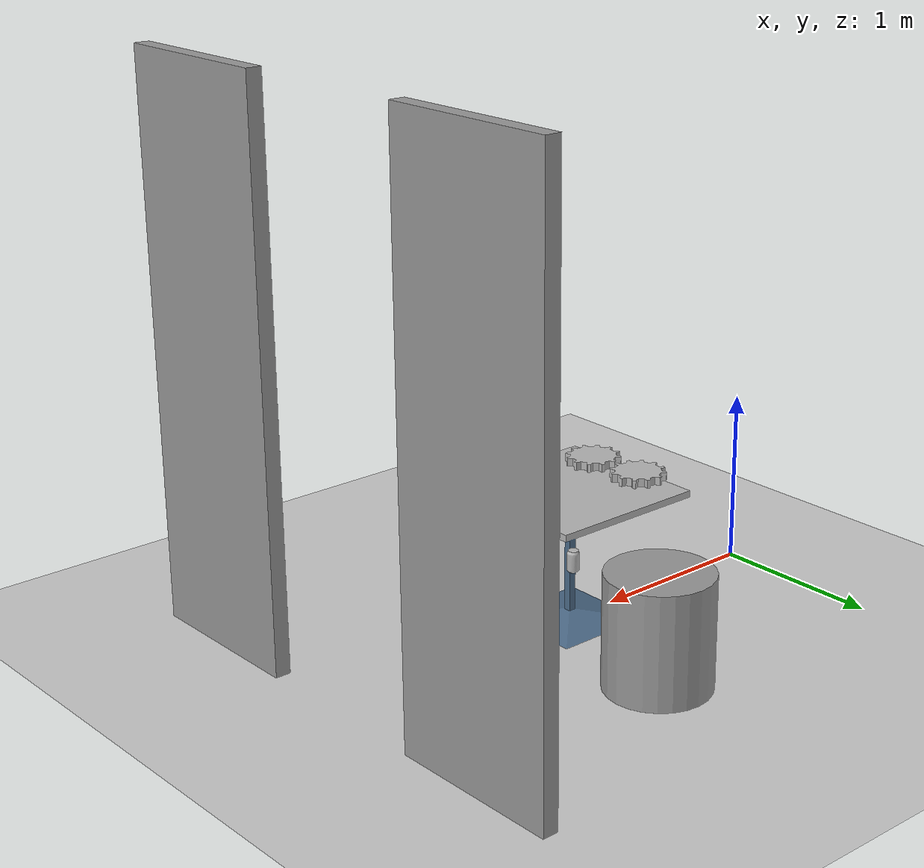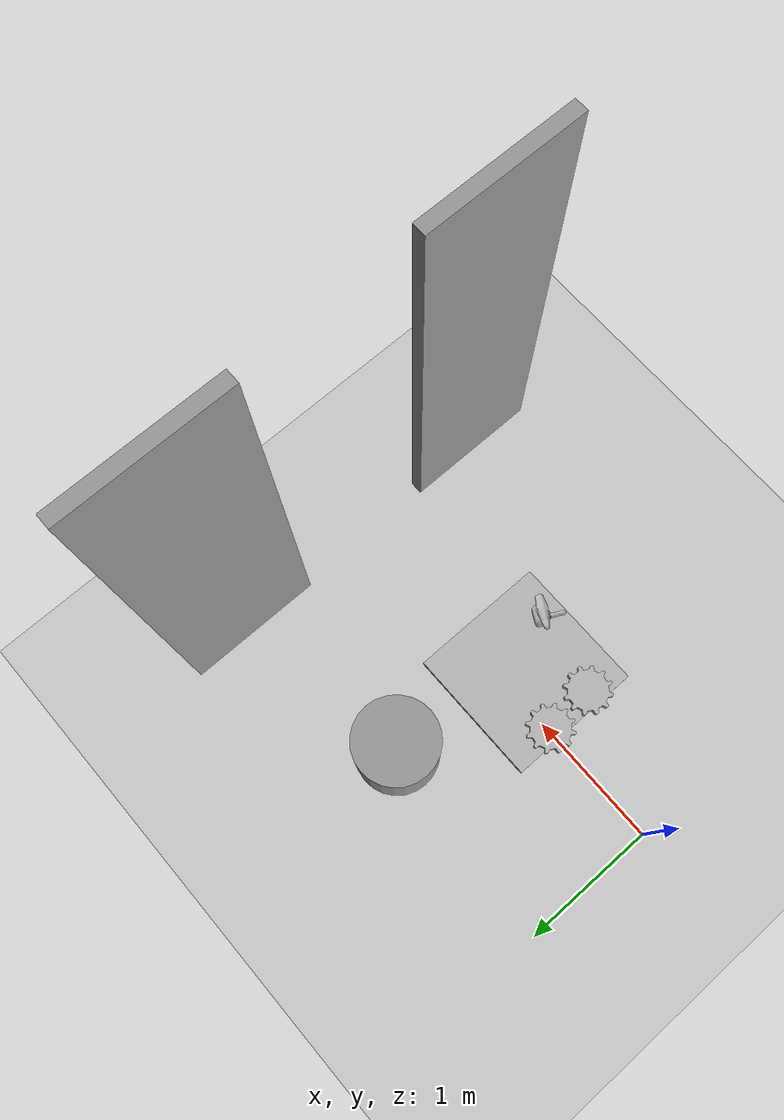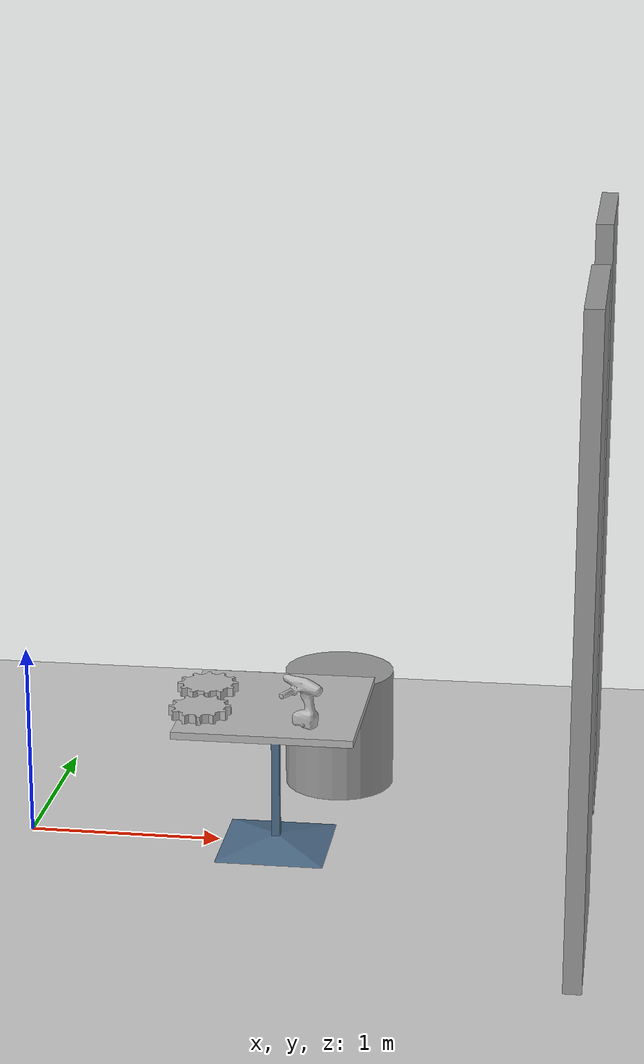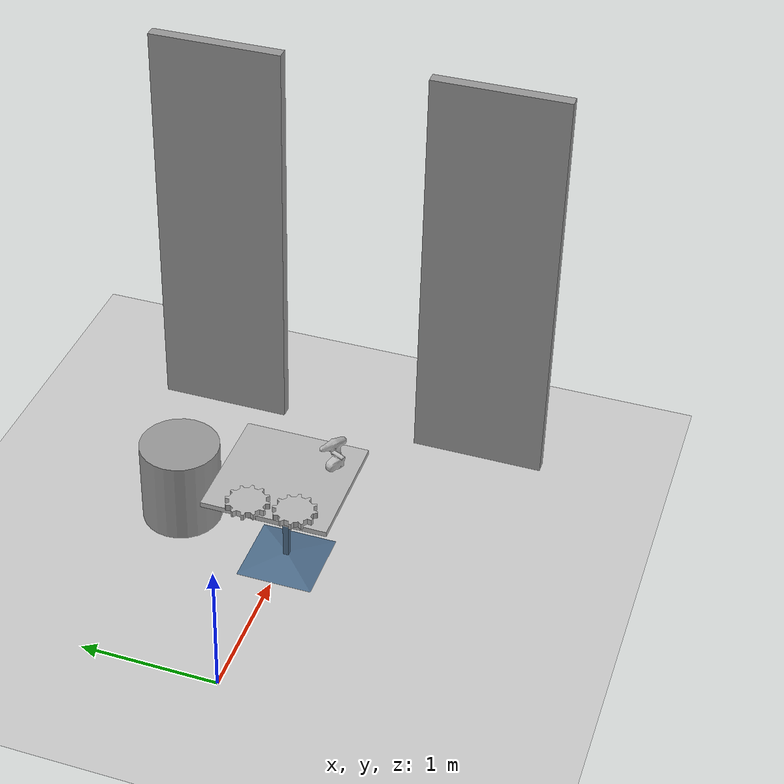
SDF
<sdf version="1.6">
 <world name="default">
  <model name="ground_plane">
   <static>1</static>
   <link name="link">
    <collision name="collision">
     <geometry><plane><normal>0 0 1</normal><size>100 100</size></plane></geometry>
     <surface><friction><ode><mu>100</mu><mu2>50</mu2></ode></friction></surface>
    </collision>
    <visual name="visual">
     <cast_shadows>0</cast_shadows>
     <geometry><plane><normal>0 0 1</normal><size>100 100</size></plane></geometry>
     <material>
      <script><uri>file://media/materials/scripts/gazebo.material</uri><name>Gazebo/Grey</name></script>
     </material>
    </visual>
   </link>
  </model>
  <gravity>0 0 -9.8</gravity>
  <magnetic_field>6e-06 2.3e-05 -4.2e-05</magnetic_field>
  <atmosphere type="adiabatic"/>
  <physics name="default_physics" default="0" type="ode">
   <max_step_size>0.001</max_step_size>
   <real_time_factor>1</real_time_factor>
   <real_time_update_rate>1000</real_time_update_rate>
  </physics>
  <scene><ambient>0.4 0.4 0.4 1</ambient><background>0.7 0.7 0.7 1</background><shadows>1</shadows></scene>
  <spherical_coordinates>
   <surface_model>EARTH_WGS84</surface_model>
   <latitude_deg>0</latitude_deg>
   <longitude_deg>0</longitude_deg>
   <elevation>0</elevation>
   <heading_deg>0</heading_deg>
  </spherical_coordinates>
  <light name="user_point_light_0" type="point">
   <pose>0.152939 -1.04387 1 0 -0 0</pose>
   <diffuse>0.5 0.5 0.5 1</diffuse>
   <specular>0.1 0.1 0.1 1</specular>
   <attenuation>
    <range>20</range>
    <constant>0.5</constant>
    <linear>0.01</linear>
    <quadratic>0.001</quadratic>
   </attenuation>
   <cast_shadows>0</cast_shadows>
   <direction>0 0 -1</direction>
  </light>
  <model name="cafe_table">
   <static>1</static>
   <link name="link">
    <collision name="surface">
     <pose>0 0 0.755 0 -0 0</pose>
     <geometry><box><size>0.913 0.913 0.04</size></box></geometry>
    </collision>
    <collision name="column">
     <pose>0 0 0.37 0 -0 0</pose>
     <geometry><box><size>0.042 0.042 0.74</size></box></geometry>
    </collision>
    <collision name="base">
     <pose>0 0 0.02 0 -0 0</pose>
     <geometry><box><size>0.56 0.56 0.04</size></box></geometry>
    </collision>
    <visual name="visual">
     <geometry><mesh><uri>model://cafe_table/meshes/cafe_table.dae</uri><scale>1 1 1</scale></mesh></geometry>
    </visual>
   </link>
   <pose>1.30171 -0.014203 0 0 -0 0</pose>
  </model>
  <model name="drill">
   <link name="link">
    <inertial>
     <pose>-0.00637 -0.008 0.13254 0 -0 0</pose>
     <inertia>
      <ixx>0.0133113</ixx>
      <ixy>-0.00030365</ixy>
      <ixz>-0.00034148</ixz>
      <iyy>0.0115766</iyy>
      <iyz>0.00088073</iyz>
      <izz>0.00378028</izz>
     </inertia>
     <mass>1.50252</mass>
    </inertial>
    <collision name="collision">
     <pose>0 0 -0.09 0 -0 0</pose>
     <geometry>
      <mesh><uri>model://cordless_drill/meshes/cordless_drill.stl</uri><scale>1 1 1</scale></mesh>
     </geometry>
    </collision>
    <visual name="visual">
     <pose>0 0 -0.09 0 -0 0</pose>
     <geometry>
      <mesh><uri>model://cordless_drill/meshes/cordless_drill.dae</uri><scale>1 1 1</scale></mesh>
     </geometry>
    </visual>
   </link>
   <pose>1.49045 -0.299395 0.772934 3.8e-05 3e-06 1.0375</pose>
  </model>
  <model name="gear_part_1">
   <link name="link">
    <inertial>
     <pose>0 0 0.005875 0 -0 0</pose>
     <mass>0.5</mass>
     <inertia>
      <ixx>0.000198203</ixx>
      <ixy>0</ixy>
      <ixz>0</ixz>
      <iyy>0.000198203</iyy>
      <iyz>0</iyz>
      <izz>0.000384405</izz>
     </inertia>
    </inertial>
    <collision name="collision">
     <pose>0 0 0.005875 0 -0 0</pose>
     <geometry><cylinder><length>0.012</length><radius>0.0392125</radius></cylinder></geometry>
     <surface><contact><ode><max_vel>0.1</max_vel><min_depth>0.001</min_depth></ode></contact></surface>
    </collision>
    <visual name="visual">
     <geometry><mesh><uri>model://gear_part/meshes/gear.dae</uri><scale>1 1 1</scale></mesh></geometry>
     <material>
      <script>
       <uri>model://arm_part/materials/scripts</uri>
       <uri>model://arm_part/materials/textures</uri>
       <name>ArmPart/Diffuse</name>
      </script>
     </material>
    </visual>
   </link>
   <pose>0.946535 -0.21052 0.774551 0 -0 0</pose>
  </model>
  <model name="gear_part_2">
   <link name="link">
    <inertial>
     <pose>0 0 0.005875 0 -0 0</pose>
     <mass>0.5</mass>
     <inertia>
      <ixx>0.000198203</ixx>
      <ixy>0</ixy>
      <ixz>0</ixz>
      <iyy>0.000198203</iyy>
      <iyz>0</iyz>
      <izz>0.000384405</izz>
     </inertia>
    </inertial>
    <collision name="collision">
     <pose>0 0 0.005875 0 -0 0</pose>
     <geometry><cylinder><length>0.012</length><radius>0.0392125</radius></cylinder></geometry>
     <surface><contact><ode><max_vel>0.1</max_vel><min_depth>0.001</min_depth></ode></contact></surface>
    </collision>
    <visual name="visual">
     <geometry><mesh><uri>model://gear_part/meshes/gear.dae</uri><scale>1 1 1</scale></mesh></geometry>
     <material>
      <script>
       <uri>model://arm_part/materials/scripts</uri>
       <uri>model://arm_part/materials/textures</uri>
       <name>ArmPart/Diffuse</name>
      </script>
     </material>
    </visual>
   </link>
   <pose>0.926645 0.126681 0.774551 0 -0 0</pose>
  </model>
  <model name="wall_section">
   <link name="link">
    <inertial>
     <mass>0.282882</mass>
     <inertia>
      <ixx>0.26157</ixx>
      <ixy>0</ixy>
      <ixz>0</ixz>
      <iyy>0.238184</iyy>
      <iyz>0</iyz>
      <izz>0.0237604</izz>
     </inertia>
    </inertial>
    <visual name="visual">
     <geometry><box><size>0.089035 1 3.17743</size></box></geometry>
     <material>
      <script><name>Gazebo/Grey</name><uri>file://media/materials/scripts/gazebo.material</uri></script>
      <ambient>0.3 0.3 0.3 1</ambient>
      <diffuse>0.7 0.7 0.7 1</diffuse>
      <specular>0.01 0.01 0.01 1</specular>
      <emissive>0 0 0 1</emissive>
     </material>
    </visual>
    <collision name="collision">
     <geometry><box><size>0.089035 1 3.17743</size></box></geometry>
     <surface>
      <friction>
       <ode><mu>1</mu><mu2>1</mu2><fdir1>0 0 0</fdir1><slip1>0</slip1><slip2>0</slip2></ode>
       <torsional>
        <coefficient>1</coefficient>
        <patch_radius>0</patch_radius>
        <surface_radius>0</surface_radius>
        <use_patch_radius>1</use_patch_radius>
        <ode><slip>0</slip></ode>
       </torsional>
      </friction>
      <bounce><restitution_coefficient>0</restitution_coefficient><threshold>1e+06</threshold></bounce>
      <contact>
       <collide_without_contact>0</collide_without_contact>
       <collide_without_contact_bitmask>1</collide_without_contact_bitmask>
       <collide_bitmask>1</collide_bitmask>
       <ode>
        <soft_cfm>0</soft_cfm>
        <soft_erp>0.2</soft_erp>
        <kp>1e+13</kp>
        <kd>1</kd>
        <max_vel>0.01</max_vel>
        <min_depth>0</min_depth>
       </ode>
       <bullet>
        <split_impulse>1</split_impulse>
        <split_impulse_penetration_threshold>-0.01</split_impulse_penetration_threshold>
        <soft_cfm>0</soft_cfm>
        <soft_erp>0.2</soft_erp>
        <kp>1e+13</kp>
        <kd>1</kd>
       </bullet>
      </contact>
     </surface>
    </collision>
   </link>
   <static>0</static>
   <pose>2.88084 1.06962 1.58871 1e-06 -0 -1.4e-05</pose>
  </model>
  <model name="wall_section_clone">
   <link name="link">
    <inertial>
     <mass>0.282882</mass>
     <inertia>
      <ixx>0.26157</ixx>
      <ixy>0</ixy>
      <ixz>0</ixz>
      <iyy>0.238184</iyy>
      <iyz>0</iyz>
      <izz>0.0237604</izz>
     </inertia>
    </inertial>
    <visual name="visual">
     <geometry><box><size>0.089035 1 3.17743</size></box></geometry>
     <material>
      <script><name>Gazebo/Grey</name><uri>file://media/materials/scripts/gazebo.material</uri></script>
      <ambient>0.3 0.3 0.3 1</ambient>
      <diffuse>0.7 0.7 0.7 1</diffuse>
      <specular>0.01 0.01 0.01 1</specular>
      <emissive>0 0 0 1</emissive>
     </material>
    </visual>
    <collision name="collision">
     <geometry><box><size>0.089035 1 3.17743</size></box></geometry>
     <surface>
      <friction>
       <ode><mu>1</mu><mu2>1</mu2><fdir1>0 0 0</fdir1><slip1>0</slip1><slip2>0</slip2></ode>
       <torsional>
        <coefficient>1</coefficient>
        <patch_radius>0</patch_radius>
        <surface_radius>0</surface_radius>
        <use_patch_radius>1</use_patch_radius>
        <ode><slip>0</slip></ode>
       </torsional>
      </friction>
      <bounce><restitution_coefficient>0</restitution_coefficient><threshold>1e+06</threshold></bounce>
      <contact>
       <collide_without_contact>0</collide_without_contact>
       <collide_without_contact_bitmask>1</collide_without_contact_bitmask>
       <collide_bitmask>1</collide_bitmask>
       <ode>
        <soft_cfm>0</soft_cfm>
        <soft_erp>0.2</soft_erp>
        <kp>1e+13</kp>
        <kd>1</kd>
        <max_vel>0.01</max_vel>
        <min_depth>0</min_depth>
       </ode>
       <bullet>
        <split_impulse>1</split_impulse>
        <split_impulse_penetration_threshold>-0.01</split_impulse_penetration_threshold>
        <soft_cfm>0</soft_cfm>
        <soft_erp>0.2</soft_erp>
        <kp>1e+13</kp>
        <kd>1</kd>
       </bullet>
      </contact>
     </surface>
    </collision>
   </link>
   <static>0</static>
   <pose>2.89554 -0.996268 1.58872 0 -0 0.001027</pose>
  </model>
  <model name="coke_can">
   <link name="link">
    <inertial>
     <mass>0.39</mass>
     <inertia><ixx>0.00058</ixx><ixy>0</ixy><ixz>0</ixz><iyy>0.00058</iyy><iyz>0</iyz><izz>0.00019</izz></inertia>
    </inertial>
    <collision name="collision">
     <pose>0 0 -0.46 0 -0 0</pose>
     <geometry><mesh><uri>model://coke_can/meshes/coke_can.dae</uri><scale>1 1 1</scale></mesh></geometry>
    </collision>
    <visual name="visual">
     <pose>0 0 -0.46 0 -0 0</pose>
     <geometry><mesh><uri>model://coke_can/meshes/coke_can.dae</uri><scale>1 1 1</scale></mesh></geometry>
    </visual>
   </link>
   <pose>1.62039 0.357698 0.770862 -0.042211 0.015161 -0.004561</pose>
  </model>
  <model name="unit_cylinder_0">
   <pose>1.51479 0.885181 0.322763 -1e-06 -1e-06 0</pose>
   <link name="link">
    <inertial>
     <mass>1</mass>
     <inertia><ixx>0.145833</ixx><ixy>0</ixy><ixz>0</ixz><iyy>0.145833</iyy><iyz>0</iyz><izz>0.125</izz></inertia>
    </inertial>
    <collision name="collision">
     <geometry><cylinder><radius>0.295476</radius><length>0.645538</length></cylinder></geometry>
    </collision>
    <visual name="visual">
     <geometry><cylinder><radius>0.295476</radius><length>0.645538</length></cylinder></geometry>
     <material>
      <script><name>Gazebo/Grey</name><uri>file://media/materials/scripts/gazebo.material</uri></script>
     </material>
    </visual>
   </link>
  </model>
 </world>
</sdf>
